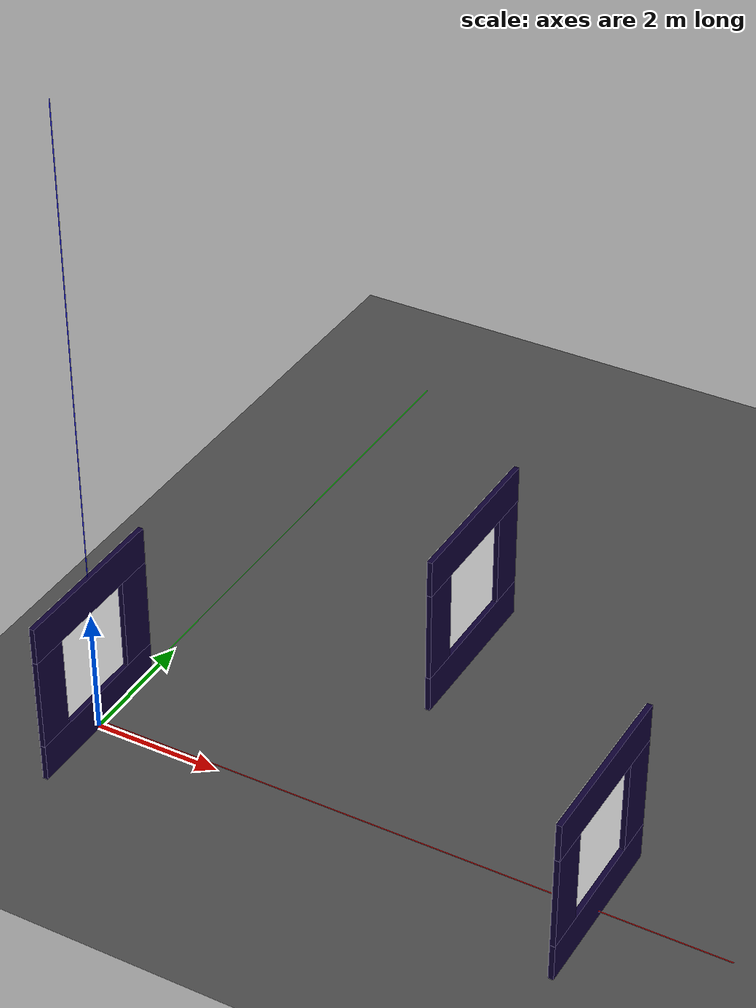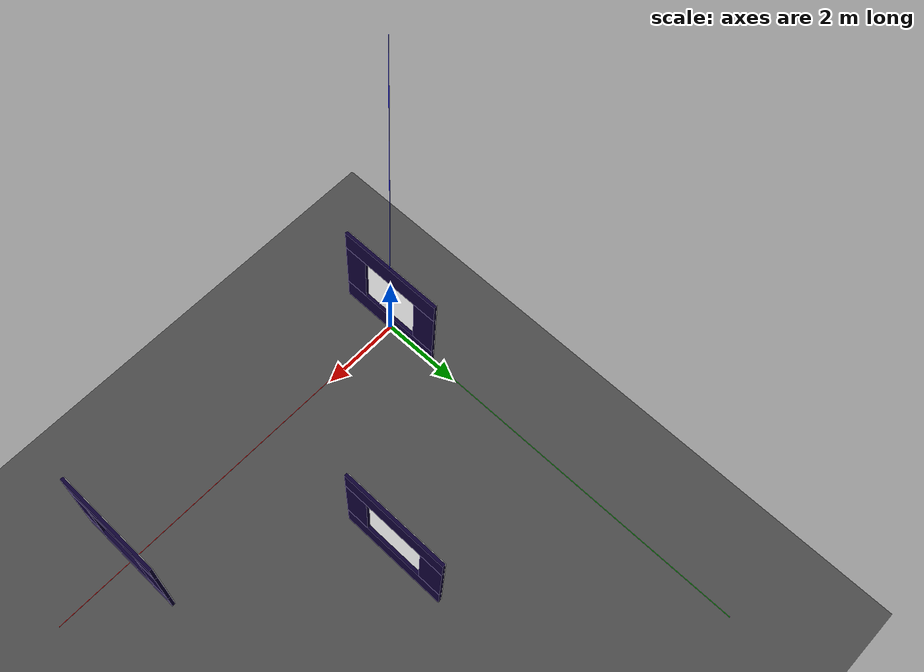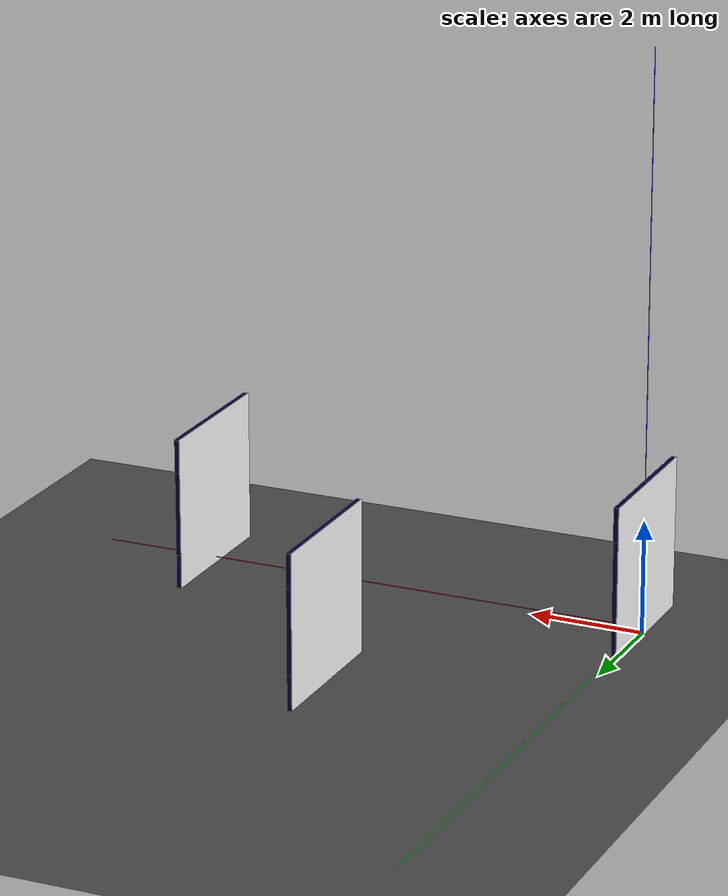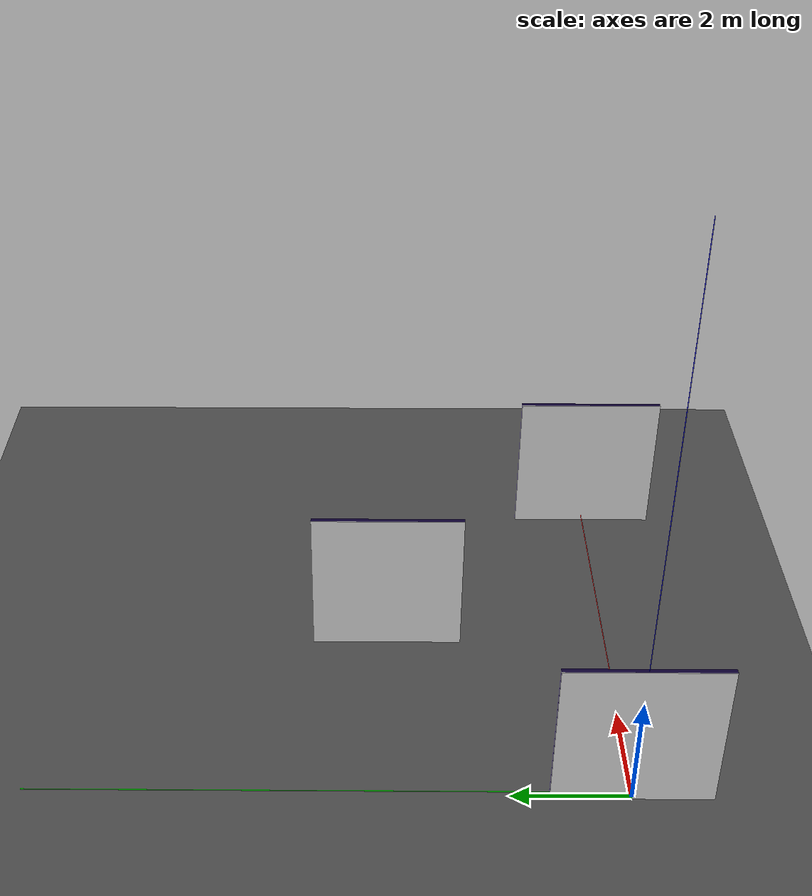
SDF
<sdf version="1.9">
 <world name="track_gates1">
  <physics name="1ms" type="ignore">
   <max_step_size>0.001</max_step_size>
   <real_time_factor>1.0</real_time_factor>
  </physics>
  <plugin filename="gz-sim-physics-system" name="gz::sim::systems::Physics"/>
  <plugin filename="gz-sim-sensors-system" name="gz::sim::systems::Sensors">
   <render_engine>ogre2</render_engine>
  </plugin>
  <plugin filename="gz-sim-user-commands-system" name="gz::sim::systems::UserCommands"/>
  <plugin filename="gz-sim-scene-broadcaster-system" name="gz::sim::systems::SceneBroadcaster"/>
  <plugin filename="gz-sim-imu-system" name="gz::sim::systems::Imu"/>
  <plugin filename="gz-sim-navsat-system" name="gz::sim::systems::NavSat"/>
  <scene><ambient>1.0 1.0 1.0</ambient><background>0.8 0.8 0.8</background></scene>
  <spherical_coordinates>
   <latitude_deg>-35.363262</latitude_deg>
   <longitude_deg>149.165237</longitude_deg>
   <elevation>584</elevation>
   <heading_deg>0</heading_deg>
   <surface_model>EARTH_WGS84</surface_model>
  </spherical_coordinates>
  <light name="sun" type="directional">
   <pose>0 0 10 0 0 0</pose>
   <diffuse>1 1 1 1</diffuse>
   <specular>0.1 0.1 0.1 1</specular>
   <attenuation>
    <range>1000</range>
    <constant>0.9</constant>
    <linear>0.01</linear>
    <quadratic>0.001</quadratic>
   </attenuation>
   <direction>-0.5 0.5 -1</direction>
  </light>
  <model name="ground_plane">
   <static>true</static>
   <link name="link">
    <collision name="collision">
     <geometry><plane><normal>0 0 1</normal><size>100 100</size></plane></geometry>
    </collision>
    <visual name="visual">
     <geometry><plane><normal>0 0 1</normal><size>100 100</size></plane></geometry>
     <material><ambient>0.3 0.3 0.3 1</ambient><diffuse>0.3 0.3 0.3 1</diffuse></material>
    </visual>
   </link>
  </model>
  <model name="axes">
   <static>1</static>
   <link name="link">
    <visual name="r">
     <cast_shadows>0</cast_shadows>
     <pose>5 0 0.1 0 0 0</pose>
     <geometry><box><size>10 0.01 0.01</size></box></geometry>
     <material>
      <ambient>1 0 0 0.8</ambient>
      <diffuse>1 0 0 0.8</diffuse>
      <emissive>1 0 0 0.8</emissive>
      <specular>0.5 0.5 0.5 0.8</specular>
     </material>
    </visual>
    <visual name="g">
     <cast_shadows>0</cast_shadows>
     <pose>0 5 0.1 0 0 0</pose>
     <geometry><box><size>0.01 10 0.01</size></box></geometry>
     <material>
      <ambient>0 1 0 0.8</ambient>
      <diffuse>0 1 0 0.8</diffuse>
      <emissive>0 1 0 0.8</emissive>
      <specular>0.5 0.5 0.5 0.8</specular>
     </material>
    </visual>
    <visual name="b">
     <cast_shadows>0</cast_shadows>
     <pose>0 0 5.1 0 0 0</pose>
     <geometry><box><size>0.01 0.01 10</size></box></geometry>
     <material>
      <ambient>0 0 1 0.8</ambient>
      <diffuse>0 0 1 0.8</diffuse>
      <emissive>0 0 1 0.8</emissive>
      <specular>0.5 0.5 0.5 0.8</specular>
     </material>
    </visual>
    <sensor name="navsat_sensor" type="navsat"><always_on>1</always_on><update_rate>1</update_rate></sensor>
   </link>
  </model>
  <include><uri>model://gate</uri><name>gate1</name><pose>0 0 0 0 0 1.5708</pose><static>true</static></include>
  <include><uri>model://gate</uri><name>gate2</name><pose>4 4 0 0 0 1.5708</pose><static>true</static></include>
  <include><uri>model://gate</uri><name>gate3</name><pose>8 0 0 0 0 1.5708</pose><static>true</static></include>
 </world>
</sdf>

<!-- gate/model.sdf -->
<sdf version="1.9">
  <model name="gate">
    <static>true</static>
    <!-- Definición del primer panel lateral -->
    <link name="side_panel_left">
      <pose>1.05 0 1.35 0 0 0</pose>
      <collision name="collision">
        <geometry>
          <box>
            <size>0.6 0.08 1.5</size>
          </box>
        </geometry>
      </collision>
      <visual name="visual">
        <geometry>
          <box>
            <size>0.6 0.08 1.5</size>
          </box>
        </geometry>
        <material>
          <ambient>0.05 0 0.2 1</ambient>
          <diffuse>0.05 0 0.2 1</diffuse>

        </material>
      </visual>
    </link>
    <!-- Definición del segundo panel lateral -->
    <link name="side_panel_right">
      <pose>-1.05 0 1.35 0 0 0</pose>
      <collision name="collision">
        <geometry>
          <box>
            <size>0.6 0.08 1.5</size>
          </box>
        </geometry>
      </collision>
      <visual name="visual">
        <geometry>
          <box>
            <size>0.6 0.08 1.5</size>
          </box>
        </geometry>
        <material>
          <ambient>0.05 0 0.2 1</ambient>
          <diffuse>0.05 0 0.2 1</diffuse>
        </material>
      </visual>
    </link>
    <!-- Definición de la barra superior -->
    <link name="top_bar">
      <pose>0 0 2.4 0 0 0</pose>
      <collision name="collision">
        <geometry>
          <box>
            <size>2.7 0.08 0.6</size>
          </box>
        </geometry>
      </collision>
      <visual name="visual">
        <geometry>
          <box>
            <size>2.7 0.08 0.6</size>
          </box>
        </geometry>
        <material>
          <ambient>0.05 0 0.2 1</ambient>
          <diffuse>0.05 0 0.2 1</diffuse>
        </material>
      </visual>
    </link>
    <!-- Definición de la barra inferior -->
    <link name="bottom_bar">
      <pose>0 0 0.3 0 0 0</pose>
      <collision name="collision">
        <geometry>
          <box>
            <size>2.7 0.08 0.6</size>
          </box>
        </geometry>
      </collision>
      <visual name="visual">
        <geometry>
          <box>
            <size>2.7 0.08 0.6</size>
          </box>
        </geometry>
        <material>
          <ambient>0.05 0 0.2 1</ambient>
          <diffuse>0.05 0 0.2 1</diffuse>
        </material>
      </visual>
    </link>
    <link name="gate_banner">
      <!-- Ajusta pose para que "tapice" el frente del gate -->
      <pose>0 0.05 1.35 1.5708 0 3.1416 </pose>
      <visual name="banner_visual">
        <cast_shadows>false</cast_shadows>
        <geometry>
          <plane>
            <normal>0 0 1</normal>
            <size>2.7 2.7</size> <!-- Ajustar a tu gusto -->
          </plane>
        </geometry>
        <material>
          <ambient>1 1 1 1</ambient>
          <diffuse>1 1 1 1</diffuse>
          <pbr>
            <metal>
              <albedo_map>textures/Gate_design.png</albedo_map>
              <roughness>0.6</roughness>
              <metalness>0</metalness>
            </metal>
          </pbr>
        </material>
      </visual>
      <!-- Sin collision para que sea "solo visual" -->
    </link>
  </model>
</sdf>
